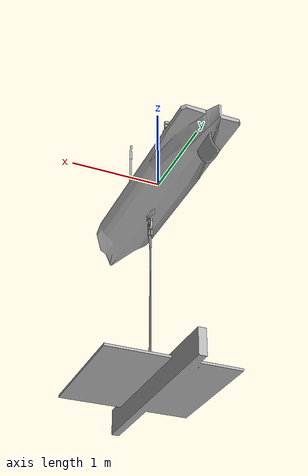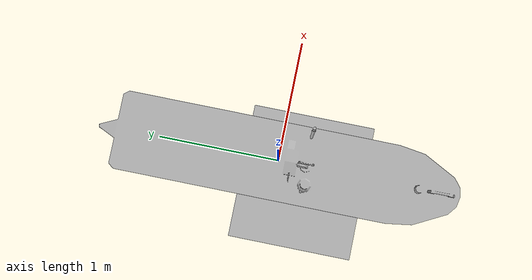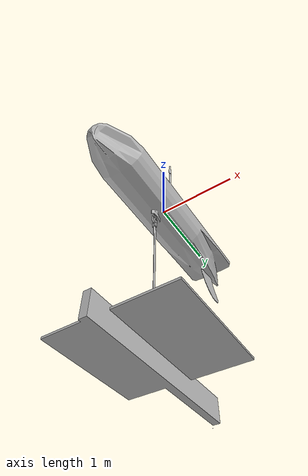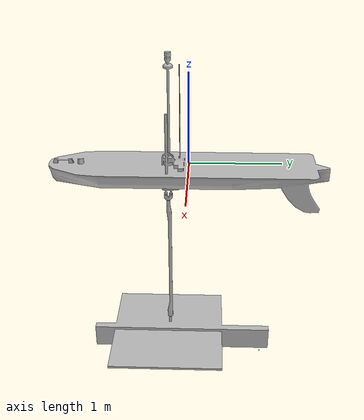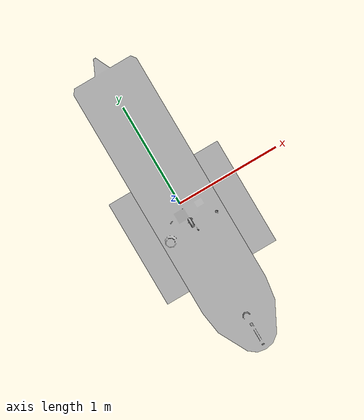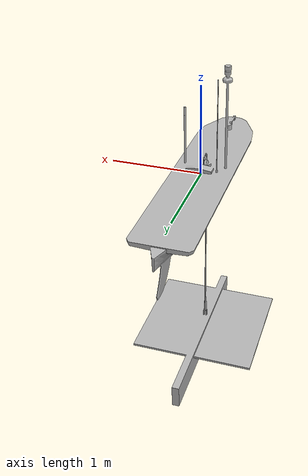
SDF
<?xml version="1.0"?>
<sdf version="1.6">
  <model name="wave_glider">
    <static>false</static>
    <link name="wave_glider_float">
      <visual name="visual">
        <pose>0 0 0 0 0 0</pose>
        <geometry>
          <mesh>
            <scale>1.0 1.0 1.0</scale>
            <uri>model://glider_wave/mesh/Wave Glider-Float.dae</uri>
          </mesh>
        </geometry>
      </visual>
      <collision name="collision">
        <pose>0 0 0 0 0 0</pose>
        <geometry>
          <mesh>
            <scale>1.0 1.0 1.0</scale>
            <uri>model://glider_wave/mesh/COLLISION-Wave Glider-float.dae</uri>
          </mesh>
        </geometry>
      </collision>
      <inertial>
        <pose>0 0 0 0 0 0</pose>
          <inertia>
              <ixx>10</ixx>
              <ixy>0</ixy>
              <ixz>0</ixz>
              <iyy>10</iyy>
              <iyz>0</iyz>
              <izz>10</izz>
          </inertia>
          <mass>50</mass>
      </inertial>
    </link>
    <link name="wave_glider_sub">
      <visual name="visual">
        <pose>0 0 0 0 0 0</pose>
        <geometry>
          <mesh>
            <scale>1.0 1.0 1.0</scale>
            <uri>model://glider_wave/mesh/Wave Glider-Sub.dae</uri>
          </mesh>
        </geometry>
      </visual>
      <collision name="collision">
        <pose>0 0 0 0 0 0</pose>
        <geometry>
          <mesh>
            <scale>1.0 1.0 1.0</scale>
            <uri>model://glider_wave/mesh/COLLISION-Wave Glider-sub.dae</uri>
          </mesh>
        </geometry>
      </collision>
      <inertial>
        <pose>0 0 -0.22 -2.15 0 0</pose>
          <inertia>
              <ixx>10</ixx>
              <ixy>0</ixy>
              <ixz>0</ixz>
              <iyy>10</iyy>
              <iyz>0</iyz>
              <izz>10</izz>
          </inertia>
          <mass>50</mass>
      </inertial>
    </link>
    <link name="wave_glider_umbilical_joint">
      <visual name="visual">
        <pose>0 0 0 0 0 0</pose>
        <geometry>
          <mesh>
            <scale>1.0 1.0 1.0</scale>
            <uri>model://glider_wave/mesh/Wave Glider-Umbilical-Joint.dae</uri>
          </mesh>
        </geometry>
      </visual>
      <inertial>
          <pose>0 -0.22 -0.38 0 0 0</pose>
          <inertia>
              <ixx>0.1</ixx>
              <ixy>0</ixy>
              <ixz>0</ixz>
              <iyy>0.1</iyy>
              <iyz>0</iyz>
              <izz>0.1</izz>
          </inertia>
          <mass>0.5</mass>
      </inertial>
    </link>
    <link name="wave_glider_umbilical">
      <visual name="visual">
        <pose>0 0 0 0 0 0</pose>
        <geometry>
          <mesh>
            <scale>1.0 1.0 1.0</scale>
            <uri>model://glider_wave/mesh/Wave Glider-Umbilical.dae</uri>
          </mesh>
        </geometry>
      </visual>
      <collision name="collision">
        <pose>0 0 0 0 0 0</pose>
        <geometry>
          <mesh>
            <scale>1.0 1.0 1.0</scale>
            <uri>model://glider_wave/mesh/COLLISION-Wave Glider-umbilical.dae</uri>
          </mesh>
        </geometry>
      </collision>
      <inertial>
          <pose>0 -0.22 -1.58 0 0 0</pose>
          <inertia>
              <ixx>0.1</ixx>
              <ixy>0</ixy>
              <ixz>0</ixz>
              <iyy>0.1</iyy>
              <iyz>0</iyz>
              <izz>0.1</izz>
          </inertia>
          <mass>0.5</mass>
      </inertial>
    </link>
    <joint name="float_umbilicaljoint_joint" type="revolute">
        <pose>0 -0.22 -0.38 0 0 0</pose>
        <child>wave_glider_umbilical_joint</child>
        <parent>wave_glider_float</parent>
        <axis>
            <limit>
                <lower>-0.8</lower>
                <upper>0.8</upper>
            </limit>
            <xyz>0 1 0</xyz>
        </axis>
    </joint>
    <joint name="umbilicaljoint_umbilical_joint" type="revolute">
        <pose>0 -0.22 -0.46 0 0 0</pose>
        <child>wave_glider_umbilical</child>
        <parent>wave_glider_umbilical_joint</parent>
        <axis>
            <limit>
                <lower>-0.8</lower>
                <upper>0.8</upper>
            </limit>
            <xyz>1 0 0</xyz>
        </axis>
    </joint>
    <joint name="umbilical_sub_joint" type="revolute">
        <pose>0 -0.22 -2.15 0 0 0</pose>
        <child>wave_glider_sub</child>
        <parent>wave_glider_umbilical</parent>
        <axis>
            <limit>
                <lower>-0.8</lower>
                <upper>0.8</upper>
            </limit>
            <xyz>0 1 0</xyz>
        </axis>
    </joint>
  </model>
</sdf>
